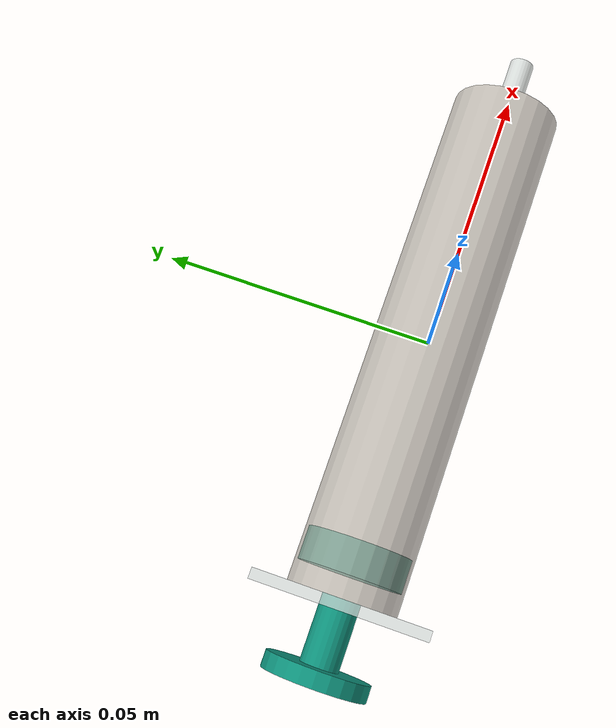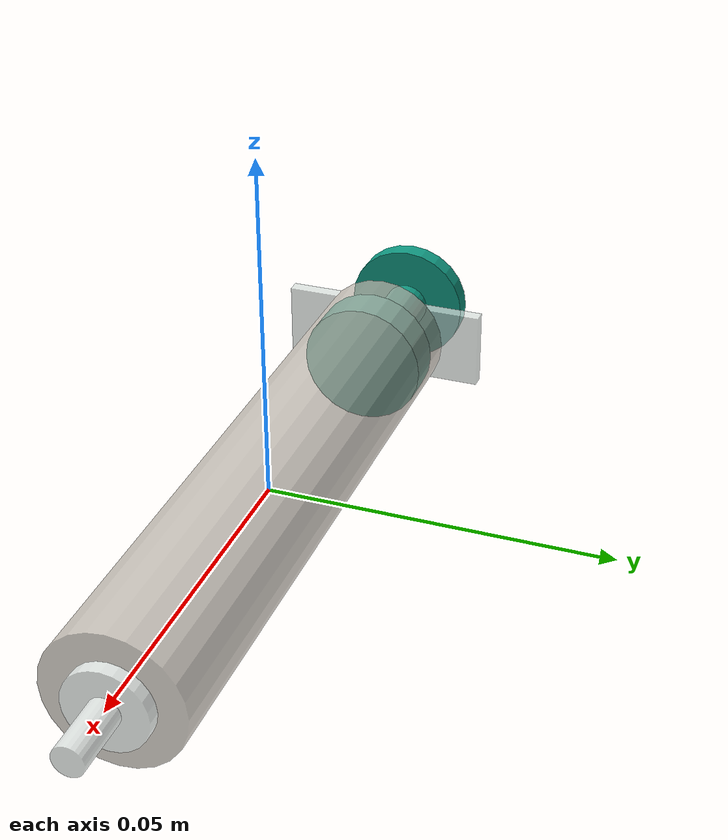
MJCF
<mujoco model="syringe">

  <default>
    <default class="collision">
      <geom
        contype="1"
        conaffinity="1"
        solref="0.01 1"
        solimp="0.95 0.99 0.0002 0.5 2"
      />
    </default>
    <default class="visual">
      <geom contype="0" conaffinity="0" mass="0" />
    </default>
  </default>

  <asset>
    <texture
      name="syringe_scale"
      type="2d"
      file="../textures/syringe/syringe_barrel.png"
    />

    <material
      name="syringe_plastic"
      rgba="0.88 0.91 0.90 0.72"
      specular="0.6"
      shininess="0.7"
    />
    <!-- The same plastic, carrying the scale. Separate so the scale is not
         pasted onto the tip and flange too. -->
    <material
      name="syringe_barrel"
      texture="syringe_scale"
      rgba="1 1 1 0.72"
      specular="0.6"
      shininess="0.7"
      texrepeat="1 1"
      texuniform="false"
    />
    <material
      name="syringe_plunger"
      rgba="0.06 0.60 0.51 1"
      specular="0.35"
      shininess="0.4"
    />
  </asset>

  <worldbody>
    <body name="syringe">
      <freejoint name="syringe_joint" />

      <geom
        name="syringe_barrel"
        class="collision"
        type="cylinder"
        fromto="-0.048 0 0 0.048 0 0"
        size="0.01005"
        mass="0.0075"
        material="syringe_barrel"
      />

      <!-- Stand-in for the moulded cone MuJoCo has no primitive for. -->
      <geom
        name="syringe_shoulder"
        class="visual"
        type="cylinder"
        fromto="0.048 0 0 0.050 0 0"
        size="0.006"
        material="syringe_plastic"
      />

      <geom
        name="syringe_tip"
        class="collision"
        type="cylinder"
        fromto="0.048 0 0 0.059 0 0"
        size="0.00225"
        mass="0.0003"
        material="syringe_plastic"
      />

      <geom
        name="syringe_flange"
        class="collision"
        type="box"
        pos="-0.049 0 0"
        size="0.001 0.016 0.006"
        mass="0.0008"
        material="syringe_plastic"
      />

      <geom
        name="syringe_plunger_rod"
        class="collision"
        type="cylinder"
        fromto="-0.048 0 0 -0.060 0 0"
        size="0.0035"
        mass="0.0012"
        material="syringe_plunger"
      />

      <geom
        name="syringe_thumb_rest"
        class="collision"
        type="cylinder"
        fromto="-0.060 0 0 -0.063 0 0"
        size="0.0095"
        mass="0.0012"
        material="syringe_plunger"
      />

      <!-- Seen through the barrel; nothing can touch it. -->
      <geom
        name="syringe_stopper"
        class="visual"
        type="cylinder"
        fromto="-0.044 0 0 -0.038 0 0"
        size="0.0095"
        material="syringe_plunger"
      />
    </body>
  </worldbody>
</mujoco>
